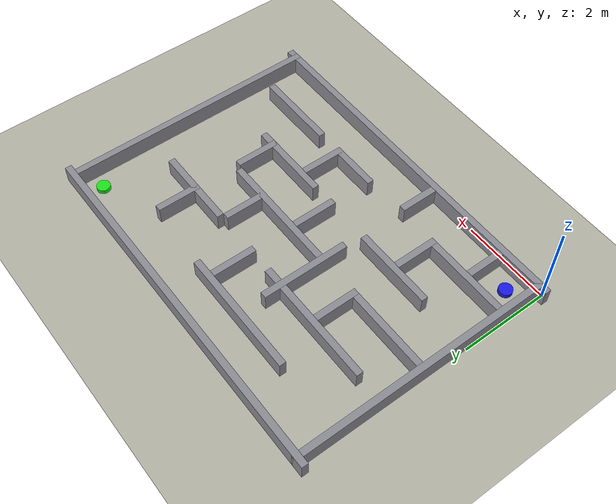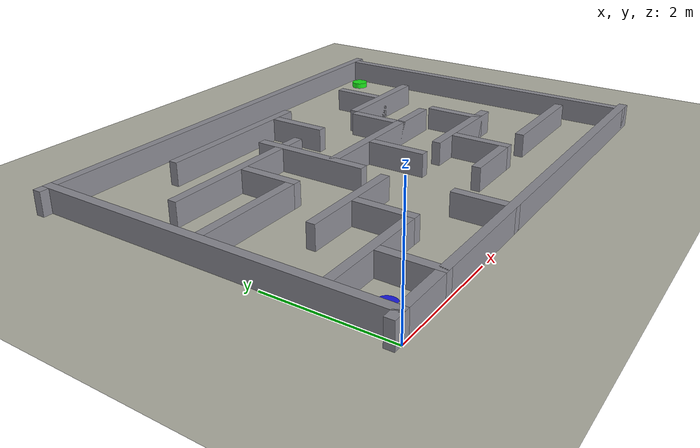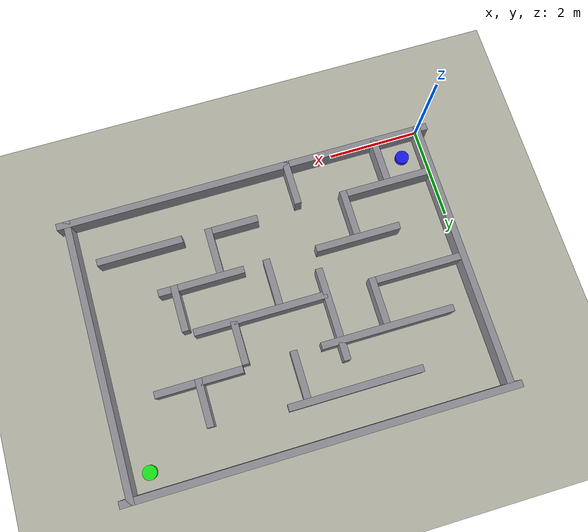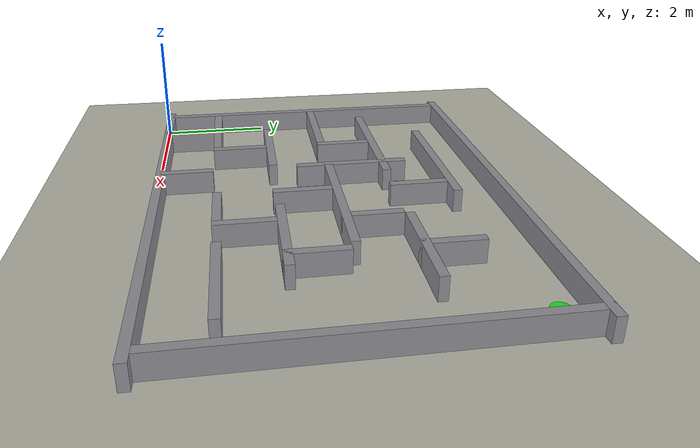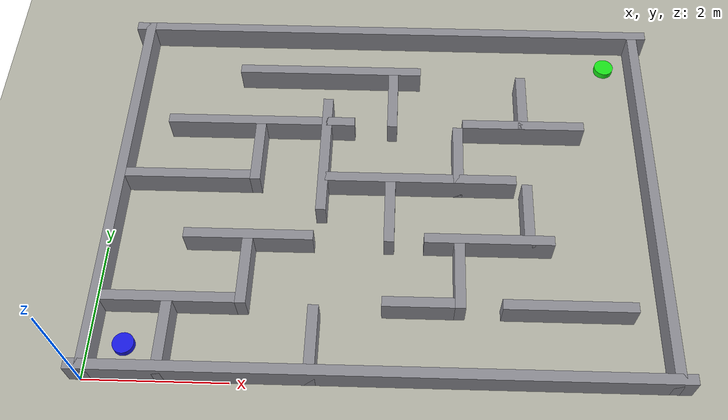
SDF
<sdf version="1.9">
  <world name="maze">
    <physics name="1ms" type="ode">
      <max_step_size>0.001</max_step_size>
      <real_time_factor>1.0</real_time_factor>
      <ode>
        <solver><type>quick</type><iters>50</iters><sor>1.3</sor></solver>
        <constraints>
          <cfm>0.0</cfm><erp>0.2</erp>
          <contact_max_correcting_vel>100</contact_max_correcting_vel>
          <contact_surface_layer>0.001</contact_surface_layer>
        </constraints>
      </ode>
    </physics>
    <plugin filename="gz-sim-physics-system"     name="gz::sim::systems::Physics"/>
    <plugin filename="gz-sim-user-commands-system" name="gz::sim::systems::UserCommands"/>
    <plugin filename="gz-sim-scene-broadcaster-system" name="gz::sim::systems::SceneBroadcaster"/>
    <plugin filename="gz-sim-contact-system"     name="gz::sim::systems::Contact"/>

    <light type="directional" name="sun">
      <cast_shadows>true</cast_shadows>
      <pose>0 0 20 0 0 0</pose>
      <diffuse>0.9 0.9 0.9 1</diffuse>
      <specular>0.3 0.3 0.3 1</specular>
      <attenuation><range>1000</range><constant>0.9</constant><linear>0.01</linear><quadratic>0.001</quadratic></attenuation>
      <direction>-0.3 0.2 -0.9</direction>
    </light>

    <model name="ground_plane">
      <static>true</static>
      <link name="link">
        <collision name="collision">
          <geometry><plane><normal>0 0 1</normal><size>30 30</size></plane></geometry>
        </collision>
        <visual name="visual">
          <geometry><plane><normal>0 0 1</normal><size>30 30</size></plane></geometry>
          <material>
            <ambient>0.7 0.7 0.65 1</ambient>
            <diffuse>0.7 0.7 0.65 1</diffuse>
          </material>
        </visual>
      </link>
    </model>

    <model name="wall_south">
      <static>true</static>
      <pose>4.0 0.075 0.2 0 0 0</pose>
      <link name="link">
        <collision name="col"><geometry><box><size>8.3 0.15 0.4</size></box></geometry></collision>
        <visual name="vis">
          <geometry><box><size>8.3 0.15 0.4</size></box></geometry>
          <material><ambient>0.55 0.55 0.58 1</ambient><diffuse>0.55 0.55 0.58 1</diffuse></material>
        </visual>
      </link>
    </model>

    <model name="wall_north">
      <static>true</static>
      <pose>4.0 5.925 0.2 0 0 0</pose>
      <link name="link">
        <collision name="col"><geometry><box><size>8.3 0.15 0.4</size></box></geometry></collision>
        <visual name="vis">
          <geometry><box><size>8.3 0.15 0.4</size></box></geometry>
          <material><ambient>0.55 0.55 0.58 1</ambient><diffuse>0.55 0.55 0.58 1</diffuse></material>
        </visual>
      </link>
    </model>

    <model name="wall_west">
      <static>true</static>
      <pose>0.075 3.0 0.2 0 0 0</pose>
      <link name="link">
        <collision name="col"><geometry><box><size>0.15 6.0 0.4</size></box></geometry></collision>
        <visual name="vis">
          <geometry><box><size>0.15 6.0 0.4</size></box></geometry>
          <material><ambient>0.55 0.55 0.58 1</ambient><diffuse>0.55 0.55 0.58 1</diffuse></material>
        </visual>
      </link>
    </model>

    <model name="wall_east">
      <static>true</static>
      <pose>7.925 3.0 0.2 0 0 0</pose>
      <link name="link">
        <collision name="col"><geometry><box><size>0.15 6.0 0.4</size></box></geometry></collision>
        <visual name="vis">
          <geometry><box><size>0.15 6.0 0.4</size></box></geometry>
          <material><ambient>0.55 0.55 0.58 1</ambient><diffuse>0.55 0.55 0.58 1</diffuse></material>
        </visual>
      </link>
    </model>

    <model name="wi_r0_c0_h">
      <static>true</static><pose>1.075 1.075 0.2 0 0 0</pose>
      <link name="link">
        <collision name="col"><geometry><box><size>1.85 0.15 0.4</size></box></geometry></collision>
        <visual name="vis"><geometry><box><size>1.85 0.15 0.4</size></box></geometry>
        <material><ambient>0.55 0.55 0.58 1</ambient><diffuse>0.55 0.55 0.58 1</diffuse></material></visual>
      </link>
    </model>

    <model name="wi_r0_c3_h">
      <static>true</static><pose>4.5 1.075 0.2 0 0 0</pose>
      <link name="link">
        <collision name="col"><geometry><box><size>1.0 0.15 0.4</size></box></geometry></collision>
        <visual name="vis"><geometry><box><size>1.0 0.15 0.4</size></box></geometry>
        <material><ambient>0.55 0.55 0.58 1</ambient><diffuse>0.55 0.55 0.58 1</diffuse></material></visual>
      </link>
    </model>

    <model name="wi_r0_c5_h">
      <static>true</static><pose>6.575 1.075 0.2 0 0 0</pose>
      <link name="link">
        <collision name="col"><geometry><box><size>1.85 0.15 0.4</size></box></geometry></collision>
        <visual name="vis"><geometry><box><size>1.85 0.15 0.4</size></box></geometry>
        <material><ambient>0.55 0.55 0.58 1</ambient><diffuse>0.55 0.55 0.58 1</diffuse></material></visual>
      </link>
    </model>

    <model name="wi_r1_c1_h">
      <static>true</static><pose>2.075 2.075 0.2 0 0 0</pose>
      <link name="link">
        <collision name="col"><geometry><box><size>1.85 0.15 0.4</size></box></geometry></collision>
        <visual name="vis"><geometry><box><size>1.85 0.15 0.4</size></box></geometry>
        <material><ambient>0.55 0.55 0.58 1</ambient><diffuse>0.55 0.55 0.58 1</diffuse></material></visual>
      </link>
    </model>

    <model name="wi_r1_c4_h">
      <static>true</static><pose>5.5 2.075 0.2 0 0 0</pose>
      <link name="link">
        <collision name="col"><geometry><box><size>1.85 0.15 0.4</size></box></geometry></collision>
        <visual name="vis"><geometry><box><size>1.85 0.15 0.4</size></box></geometry>
        <material><ambient>0.55 0.55 0.58 1</ambient><diffuse>0.55 0.55 0.58 1</diffuse></material></visual>
      </link>
    </model>

    <model name="wi_r2_c0_h">
      <static>true</static><pose>1.075 3.075 0.2 0 0 0</pose>
      <link name="link">
        <collision name="col"><geometry><box><size>1.85 0.15 0.4</size></box></geometry></collision>
        <visual name="vis"><geometry><box><size>1.85 0.15 0.4</size></box></geometry>
        <material><ambient>0.55 0.55 0.58 1</ambient><diffuse>0.55 0.55 0.58 1</diffuse></material></visual>
      </link>
    </model>

    <model name="wi_r2_c3_h">
      <static>true</static><pose>4.5 3.075 0.2 0 0 0</pose>
      <link name="link">
        <collision name="col"><geometry><box><size>2.85 0.15 0.4</size></box></geometry></collision>
        <visual name="vis"><geometry><box><size>2.85 0.15 0.4</size></box></geometry>
        <material><ambient>0.55 0.55 0.58 1</ambient><diffuse>0.55 0.55 0.58 1</diffuse></material></visual>
      </link>
    </model>

    <model name="wi_r3_c1_h">
      <static>true</static><pose>2.075 4.075 0.2 0 0 0</pose>
      <link name="link">
        <collision name="col"><geometry><box><size>2.85 0.15 0.4</size></box></geometry></collision>
        <visual name="vis"><geometry><box><size>2.85 0.15 0.4</size></box></geometry>
        <material><ambient>0.55 0.55 0.58 1</ambient><diffuse>0.55 0.55 0.58 1</diffuse></material></visual>
      </link>
    </model>

    <model name="wi_r3_c5_h">
      <static>true</static><pose>6.075 4.075 0.2 0 0 0</pose>
      <link name="link">
        <collision name="col"><geometry><box><size>1.85 0.15 0.4</size></box></geometry></collision>
        <visual name="vis"><geometry><box><size>1.85 0.15 0.4</size></box></geometry>
        <material><ambient>0.55 0.55 0.58 1</ambient><diffuse>0.55 0.55 0.58 1</diffuse></material></visual>
      </link>
    </model>

    <model name="wi_r4_c2_h">
      <static>true</static><pose>3.075 5.075 0.2 0 0 0</pose>
      <link name="link">
        <collision name="col"><geometry><box><size>2.85 0.15 0.4</size></box></geometry></collision>
        <visual name="vis"><geometry><box><size>2.85 0.15 0.4</size></box></geometry>
        <material><ambient>0.55 0.55 0.58 1</ambient><diffuse>0.55 0.55 0.58 1</diffuse></material></visual>
      </link>
    </model>

    <model name="wi_c1_r0_v">
      <static>true</static><pose>1.075 0.5 0.2 0 0 0</pose>
      <link name="link">
        <collision name="col"><geometry><box><size>0.15 1.0 0.4</size></box></geometry></collision>
        <visual name="vis"><geometry><box><size>0.15 1.0 0.4</size></box></geometry>
        <material><ambient>0.55 0.55 0.58 1</ambient><diffuse>0.55 0.55 0.58 1</diffuse></material></visual>
      </link>
    </model>

    <model name="wi_c2_r1_v">
      <static>true</static><pose>2.075 1.5 0.2 0 0 0</pose>
      <link name="link">
        <collision name="col"><geometry><box><size>0.15 1.0 0.4</size></box></geometry></collision>
        <visual name="vis"><geometry><box><size>0.15 1.0 0.4</size></box></geometry>
        <material><ambient>0.55 0.55 0.58 1</ambient><diffuse>0.55 0.55 0.58 1</diffuse></material></visual>
      </link>
    </model>

    <model name="wi_c3_r0_v">
      <static>true</static><pose>3.075 0.5 0.2 0 0 0</pose>
      <link name="link">
        <collision name="col"><geometry><box><size>0.15 1.0 0.4</size></box></geometry></collision>
        <visual name="vis"><geometry><box><size>0.15 1.0 0.4</size></box></geometry>
        <material><ambient>0.55 0.55 0.58 1</ambient><diffuse>0.55 0.55 0.58 1</diffuse></material></visual>
      </link>
    </model>

    <model name="wi_c4_r2_v">
      <static>true</static><pose>4.075 2.5 0.2 0 0 0</pose>
      <link name="link">
        <collision name="col"><geometry><box><size>0.15 1.0 0.4</size></box></geometry></collision>
        <visual name="vis"><geometry><box><size>0.15 1.0 0.4</size></box></geometry>
        <material><ambient>0.55 0.55 0.58 1</ambient><diffuse>0.55 0.55 0.58 1</diffuse></material></visual>
      </link>
    </model>

    <model name="wi_c5_r1_v">
      <static>true</static><pose>5.075 1.5 0.2 0 0 0</pose>
      <link name="link">
        <collision name="col"><geometry><box><size>0.15 1.0 0.4</size></box></geometry></collision>
        <visual name="vis"><geometry><box><size>0.15 1.0 0.4</size></box></geometry>
        <material><ambient>0.55 0.55 0.58 1</ambient><diffuse>0.55 0.55 0.58 1</diffuse></material></visual>
      </link>
    </model>

    <model name="wi_c5_r3_v">
      <static>true</static><pose>5.075 3.5 0.2 0 0 0</pose>
      <link name="link">
        <collision name="col"><geometry><box><size>0.15 1.0 0.4</size></box></geometry></collision>
        <visual name="vis"><geometry><box><size>0.15 1.0 0.4</size></box></geometry>
        <material><ambient>0.55 0.55 0.58 1</ambient><diffuse>0.55 0.55 0.58 1</diffuse></material></visual>
      </link>
    </model>

    <model name="wi_c6_r2_v">
      <static>true</static><pose>6.075 2.5 0.2 0 0 0</pose>
      <link name="link">
        <collision name="col"><geometry><box><size>0.15 1.0 0.4</size></box></geometry></collision>
        <visual name="vis"><geometry><box><size>0.15 1.0 0.4</size></box></geometry>
        <material><ambient>0.55 0.55 0.58 1</ambient><diffuse>0.55 0.55 0.58 1</diffuse></material></visual>
      </link>
    </model>

    <model name="wi_c6_r4_v">
      <static>true</static><pose>6.075 4.5 0.2 0 0 0</pose>
      <link name="link">
        <collision name="col"><geometry><box><size>0.15 1.0 0.4</size></box></geometry></collision>
        <visual name="vis"><geometry><box><size>0.15 1.0 0.4</size></box></geometry>
        <material><ambient>0.55 0.55 0.58 1</ambient><diffuse>0.55 0.55 0.58 1</diffuse></material></visual>
      </link>
    </model>

    <model name="wi_c2_r3_v">
      <static>true</static><pose>2.075 3.5 0.2 0 0 0</pose>
      <link name="link">
        <collision name="col"><geometry><box><size>0.15 1.0 0.4</size></box></geometry></collision>
        <visual name="vis"><geometry><box><size>0.15 1.0 0.4</size></box></geometry>
        <material><ambient>0.55 0.55 0.58 1</ambient><diffuse>0.55 0.55 0.58 1</diffuse></material></visual>
      </link>
    </model>

    <model name="wi_c4_r4_v">
      <static>true</static><pose>4.075 4.5 0.2 0 0 0</pose>
      <link name="link">
        <collision name="col"><geometry><box><size>0.15 1.0 0.4</size></box></geometry></collision>
        <visual name="vis"><geometry><box><size>0.15 1.0 0.4</size></box></geometry>
        <material><ambient>0.55 0.55 0.58 1</ambient><diffuse>0.55 0.55 0.58 1</diffuse></material></visual>
      </link>
    </model>

    <model name="wi_c3_r3_v">
      <static>true</static><pose>3.075 3.5 0.2 0 0 0</pose>
      <link name="link">
        <collision name="col"><geometry><box><size>0.15 2.0 0.4</size></box></geometry></collision>
        <visual name="vis"><geometry><box><size>0.15 2.0 0.4</size></box></geometry>
        <material><ambient>0.55 0.55 0.58 1</ambient><diffuse>0.55 0.55 0.58 1</diffuse></material></visual>
      </link>
    </model>

    <model name="goal_marker">
      <static>true</static>
      <pose>7.5 5.5 0.05 0 0 0</pose>
      <link name="link">
        <visual name="vis">
          <geometry><cylinder><radius>0.15</radius><length>0.10</length></cylinder></geometry>
          <material>
            <ambient>0.1 0.9 0.1 1</ambient>
            <diffuse>0.1 0.9 0.1 1</diffuse>
            <emissive>0.0 0.4 0.0 1</emissive>
          </material>
        </visual>
      </link>
    </model>

    <model name="start_marker">
      <static>true</static>
      <pose>0.5 0.5 0.05 0 0 0</pose>
      <link name="link">
        <visual name="vis">
          <geometry><cylinder><radius>0.15</radius><length>0.10</length></cylinder></geometry>
          <material>
            <ambient>0.1 0.1 0.9 1</ambient>
            <diffuse>0.1 0.1 0.9 1</diffuse>
            <emissive>0.0 0.0 0.4 1</emissive>
          </material>
        </visual>
      </link>
    </model>

  </world>
</sdf>
